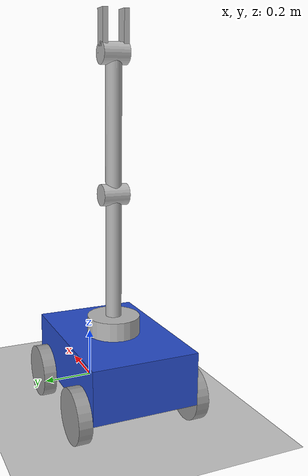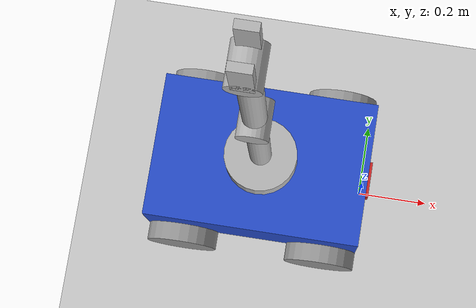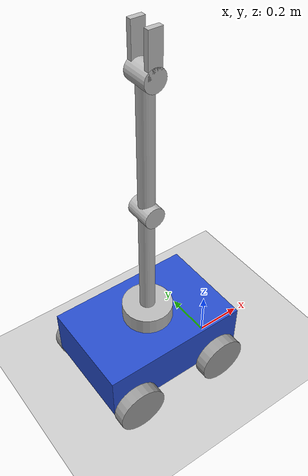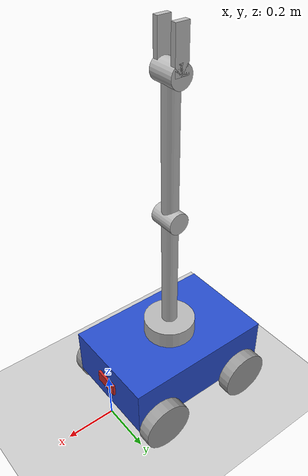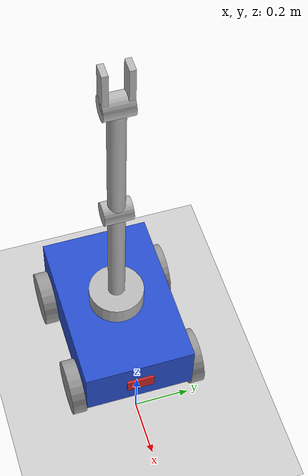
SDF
<sdf version="1.7">
 <world name="default">
  <model name="ground_plane">
   <static>1</static>
   <link name="link">
    <collision name="collision">
     <geometry><plane><normal>0 0 1</normal><size>100 100</size></plane></geometry>
     <surface>
      <contact><collide_bitmask>65535</collide_bitmask></contact>
      <friction><ode><mu>100</mu><mu2>50</mu2></ode></friction>
     </surface>
    </collision>
    <visual name="visual">
     <cast_shadows>0</cast_shadows>
     <geometry><plane><normal>0 0 1</normal><size>100 100</size></plane></geometry>
     <material>
      <script><uri>file://media/materials/scripts/gazebo.material</uri><name>Gazebo/Grey</name></script>
     </material>
    </visual>
   </link>
  </model>
  <model name="my_robot">
   <link name="base_footprint">
    <inertial>
     <pose>0.00598 0 0.2 0 -0 0</pose>
     <mass>5.1</mass>
     <inertia>
      <ixx>0.666753</ixx>
      <ixy>0</ixy>
      <ixz>0</ixz>
      <iyy>0.876123</iyy>
      <iyz>0</iyz>
      <izz>0.34287</izz>
     </inertia>
    </inertial>
    <collision name="base_footprint_fixed_joint_lump__base_link_collision">
     <pose>0 0 0.2 0 -0 0</pose>
     <geometry><box><size>0.6 0.4 0.2</size></box></geometry>
    </collision>
    <collision name="base_footprint_fixed_joint_lump__camera_link_collision_1">
     <pose>0.305 0 0.2 0 -0 0</pose>
     <geometry><box><size>0.01 0.1 0.05</size></box></geometry>
    </collision>
    <visual name="base_footprint_fixed_joint_lump__base_link_visual">
     <pose>0 0 0.2 0 -0 0</pose>
     <geometry><box><size>0.6 0.4 0.2</size></box></geometry>
     <material>
      <script><name>Gazebo/Blue</name><uri>file://media/materials/scripts/gazebo.material</uri></script>
     </material>
    </visual>
    <visual name="base_footprint_fixed_joint_lump__camera_link_visual_1">
     <pose>0.305 0 0.2 0 -0 0</pose>
     <geometry><box><size>0.01 0.1 0.05</size></box></geometry>
     <material>
      <script><name>Gazebo/Red</name><uri>file://media/materials/scripts/gazebo.material</uri></script>
     </material>
    </visual>
    <sensor name="camera_sensor" type="camera">
     <visualize>1</visualize>
     <update_rate>10</update_rate>
     <plugin name="camera_controller" filename="libgazebo_ros_camera.so">
      <frame_name>camera_link</frame_name>
     </plugin>
     <pose>0.305 0 0.2 0 -0 0</pose>
     <camera>
      <horizontal_fov>1.047</horizontal_fov>
      <image><width>320</width><height>240</height></image>
      <clip><near>0.1</near><far>100</far></clip>
     </camera>
    </sensor>
   </link>
   <joint name="base_arm_base_joint" type="revolute">
    <pose relative_to="base_footprint">0 0 0.335 0 -0 0</pose>
    <parent>base_footprint</parent>
    <child>arm_base_link</child>
    <axis>
     <xyz>0 0 1</xyz>
     <limit><lower>-1e+16</lower><upper>1e+16</upper></limit>
     <dynamics><spring_reference>0</spring_reference><spring_stiffness>0</spring_stiffness></dynamics>
    </axis>
   </joint>
   <link name="arm_base_link">
    <pose relative_to="base_arm_base_joint">0 0 0 0 -0 0</pose>
    <inertial>
     <mass>0.5</mass>
     <inertia>
      <ixx>0.00581667</ixx>
      <ixy>0</ixy>
      <ixz>0</ixz>
      <iyy>0.00581667</iyy>
      <iyz>0</iyz>
      <izz>0.01</izz>
     </inertia>
    </inertial>
    <collision name="arm_base_link_collision">
     <geometry><cylinder><length>0.07</length><radius>0.1</radius></cylinder></geometry>
    </collision>
    <visual name="arm_base_link_visual">
     <geometry><cylinder><length>0.07</length><radius>0.1</radius></cylinder></geometry>
    </visual>
   </link>
   <joint name="base_arm_first_joint" type="revolute">
    <pose relative_to="arm_base_link">0 0 0 0 -0 0</pose>
    <parent>arm_base_link</parent>
    <child>arm_link_first</child>
    <axis>
     <xyz>0 1 0</xyz>
     <limit><lower>-1.5708</lower><upper>1.5708</upper><effort>100</effort><velocity>100</velocity></limit>
     <dynamics><spring_reference>0</spring_reference><spring_stiffness>0</spring_stiffness></dynamics>
    </axis>
   </joint>
   <link name="arm_link_first">
    <pose relative_to="base_arm_first_joint">0 0 0 0 -0 0</pose>
    <inertial>
     <pose>0 0 0.25 0 -0 0</pose>
     <mass>0.6</mass>
     <inertia>
      <ixx>0.06425</ixx>
      <ixy>0</ixy>
      <ixz>0</ixz>
      <iyy>0.06373</iyy>
      <iyz>1.47304e-19</iyz>
      <izz>0.00202</izz>
     </inertia>
    </inertial>
    <collision name="arm_link_first_collision">
     <geometry><cylinder><length>0.5</length><radius>0.03</radius></cylinder></geometry>
    </collision>
    <collision name="arm_link_first_fixed_joint_lump__arm_joint_link_first_collision_1">
     <pose>0 0 0.5 1.5708 -0 0</pose>
     <geometry><cylinder><length>0.1</length><radius>0.04</radius></cylinder></geometry>
    </collision>
    <visual name="arm_link_first_visual">
     <pose>0 0 0.25 0 -0 0</pose>
     <geometry><cylinder><length>0.5</length><radius>0.03</radius></cylinder></geometry>
    </visual>
    <visual name="arm_link_first_fixed_joint_lump__arm_joint_link_first_visual_1">
     <pose>0 0 0.5 1.5708 -0 0</pose>
     <geometry><cylinder><length>0.1</length><radius>0.04</radius></cylinder></geometry>
    </visual>
   </link>
   <joint name="second_arm_link_joint" type="revolute">
    <pose relative_to="arm_link_first">0 0 0.5 0 -0 0</pose>
    <parent>arm_link_first</parent>
    <child>arm_link_second</child>
    <axis>
     <xyz>0 1 0</xyz>
     <limit><lower>-1e+16</lower><upper>1e+16</upper></limit>
     <dynamics><spring_reference>0</spring_reference><spring_stiffness>0</spring_stiffness></dynamics>
    </axis>
   </joint>
   <link name="arm_link_second">
    <pose relative_to="second_arm_link_joint">0 0 0 0 -0 0</pose>
    <inertial>
     <mass>0.3</mass>
     <inertia><ixx>0.02527</ixx><ixy>0</ixy><ixz>0</ixz><iyy>0.02527</iyy><iyz>0</iyz><izz>0.00054</izz></inertia>
    </inertial>
    <collision name="arm_link_second_collision">
     <geometry><cylinder><length>0.5</length><radius>0.03</radius></cylinder></geometry>
    </collision>
    <visual name="arm_link_second_visual">
     <pose>0 0 0.25 0 -0 0</pose>
     <geometry><cylinder><length>0.5</length><radius>0.03</radius></cylinder></geometry>
    </visual>
   </link>
   <joint name="arm_link_second_rev_joint" type="revolute">
    <pose relative_to="arm_link_second">0 0 0.5 1.5708 -0 0</pose>
    <parent>arm_link_second</parent>
    <child>arm_joint_link_second</child>
    <axis>
     <xyz>0 0 1</xyz>
     <limit><lower>-1e+16</lower><upper>1e+16</upper></limit>
     <dynamics><spring_reference>0</spring_reference><spring_stiffness>0</spring_stiffness></dynamics>
    </axis>
   </joint>
   <link name="arm_joint_link_second">
    <pose relative_to="arm_link_second_rev_joint">0 0 0 0 -0 0</pose>
    <inertial>
     <mass>0.3</mass>
     <inertia><ixx>0.00148</ixx><ixy>0</ixy><ixz>0</ixz><iyy>0.00148</iyy><iyz>0</iyz><izz>0.00096</izz></inertia>
    </inertial>
    <collision name="arm_joint_link_second_collision">
     <geometry><cylinder><length>0.1</length><radius>0.04</radius></cylinder></geometry>
    </collision>
    <visual name="arm_joint_link_second_visual">
     <geometry><cylinder><length>0.1</length><radius>0.04</radius></cylinder></geometry>
    </visual>
   </link>
   <joint name="gripper_left_joint" type="revolute">
    <pose relative_to="arm_joint_link_second">0 0 -0.04 0 0 -1.5708</pose>
    <parent>arm_joint_link_second</parent>
    <child>left_gripper</child>
    <axis>
     <xyz>0 1 0</xyz>
     <limit><lower>-1e+16</lower><upper>1e+16</upper></limit>
     <dynamics><spring_reference>0</spring_reference><spring_stiffness>0</spring_stiffness></dynamics>
    </axis>
   </joint>
   <link name="left_gripper">
    <pose relative_to="gripper_left_joint">0 0 0 0 -0 0</pose>
    <inertial>
     <mass>0.2</mass>
     <inertia>
      <ixx>0.00152667</ixx>
      <ixy>0</ixy>
      <ixz>0</ixz>
      <iyy>0.00166667</iyy>
      <iyz>0</iyz>
      <izz>0.000193333</izz>
     </inertia>
    </inertial>
    <collision name="left_gripper_collision">
     <pose>-0.075 0 0 0 -0 0</pose>
     <geometry><box><size>0.15 0.05 0.02</size></box></geometry>
    </collision>
    <visual name="left_gripper_visual">
     <pose>-0.075 0 0 0 -0 0</pose>
     <geometry><box><size>0.15 0.05 0.02</size></box></geometry>
    </visual>
   </link>
   <joint name="gripper_right_joint" type="revolute">
    <pose relative_to="arm_joint_link_second">0 0 0.04 0 0 -1.5708</pose>
    <parent>arm_joint_link_second</parent>
    <child>right_gripper</child>
    <axis>
     <xyz>0 1 0</xyz>
     <limit><lower>-1e+16</lower><upper>1e+16</upper></limit>
     <dynamics><spring_reference>0</spring_reference><spring_stiffness>0</spring_stiffness></dynamics>
    </axis>
   </joint>
   <link name="right_gripper">
    <pose relative_to="gripper_right_joint">0 0 0 0 -0 0</pose>
    <inertial>
     <mass>0.2</mass>
     <inertia>
      <ixx>0.00152667</ixx>
      <ixy>0</ixy>
      <ixz>0</ixz>
      <iyy>0.00166667</iyy>
      <iyz>0</iyz>
      <izz>0.000193333</izz>
     </inertia>
    </inertial>
    <collision name="right_gripper_collision">
     <pose>-0.075 0 0 0 -0 0</pose>
     <geometry><box><size>0.15 0.05 0.02</size></box></geometry>
    </collision>
    <visual name="right_gripper_visual">
     <pose>-0.075 0 0 0 -0 0</pose>
     <geometry><box><size>0.15 0.05 0.02</size></box></geometry>
    </visual>
   </link>
   <joint name="base_front_left_wheel_joint" type="revolute">
    <pose relative_to="base_footprint">0.2 0.225 0.1 1.5708 -0 0</pose>
    <parent>base_footprint</parent>
    <child>front_left_wheel_link</child>
    <axis>
     <xyz>0 0 1</xyz>
     <limit><lower>-1e+16</lower><upper>1e+16</upper></limit>
     <dynamics><spring_reference>0</spring_reference><spring_stiffness>0</spring_stiffness></dynamics>
    </axis>
   </joint>
   <link name="front_left_wheel_link">
    <pose relative_to="base_front_left_wheel_joint">0 0 0 0 -0 0</pose>
    <inertial>
     <mass>1</mass>
     <inertia><ixx>0.0108333</ixx><ixy>0</ixy><ixz>0</ixz><iyy>0.0108333</iyy><iyz>0</iyz><izz>0.02</izz></inertia>
    </inertial>
    <collision name="front_left_wheel_link_collision">
     <geometry><cylinder><length>0.05</length><radius>0.1</radius></cylinder></geometry>
    </collision>
    <visual name="front_left_wheel_link_visual">
     <geometry><cylinder><length>0.05</length><radius>0.1</radius></cylinder></geometry>
     <material>
      <script><name>Gazebo/Grey</name><uri>file://media/materials/scripts/gazebo.material</uri></script>
     </material>
    </visual>
   </link>
   <joint name="base_front_right_wheel_joint" type="revolute">
    <pose relative_to="base_footprint">0.2 -0.225 0.1 1.5708 -0 0</pose>
    <parent>base_footprint</parent>
    <child>front_right_wheel_link</child>
    <axis>
     <xyz>0 0 1</xyz>
     <limit><lower>-1e+16</lower><upper>1e+16</upper></limit>
     <dynamics><spring_reference>0</spring_reference><spring_stiffness>0</spring_stiffness></dynamics>
    </axis>
   </joint>
   <link name="front_right_wheel_link">
    <pose relative_to="base_front_right_wheel_joint">0 0 0 0 -0 0</pose>
    <inertial>
     <mass>1</mass>
     <inertia><ixx>0.0108333</ixx><ixy>0</ixy><ixz>0</ixz><iyy>0.0108333</iyy><iyz>0</iyz><izz>0.02</izz></inertia>
    </inertial>
    <collision name="front_right_wheel_link_collision">
     <geometry><cylinder><length>0.05</length><radius>0.1</radius></cylinder></geometry>
    </collision>
    <visual name="front_right_wheel_link_visual">
     <geometry><cylinder><length>0.05</length><radius>0.1</radius></cylinder></geometry>
     <material>
      <script><name>Gazebo/Grey</name><uri>file://media/materials/scripts/gazebo.material</uri></script>
     </material>
    </visual>
   </link>
   <joint name="base_left_wheel_joint" type="revolute">
    <pose relative_to="base_footprint">-0.2 0.225 0.1 1.5708 -0 0</pose>
    <parent>base_footprint</parent>
    <child>left_wheel_link</child>
    <axis>
     <xyz>0 0 1</xyz>
     <limit><lower>-1e+16</lower><upper>1e+16</upper></limit>
     <dynamics><spring_reference>0</spring_reference><spring_stiffness>0</spring_stiffness></dynamics>
    </axis>
   </joint>
   <link name="left_wheel_link">
    <pose relative_to="base_left_wheel_joint">0 0 0 0 -0 0</pose>
    <inertial>
     <mass>1</mass>
     <inertia><ixx>0.0108333</ixx><ixy>0</ixy><ixz>0</ixz><iyy>0.0108333</iyy><iyz>0</iyz><izz>0.02</izz></inertia>
    </inertial>
    <collision name="left_wheel_link_collision">
     <geometry><cylinder><length>0.05</length><radius>0.1</radius></cylinder></geometry>
    </collision>
    <visual name="left_wheel_link_visual">
     <geometry><cylinder><length>0.05</length><radius>0.1</radius></cylinder></geometry>
     <material>
      <script><name>Gazebo/Grey</name><uri>file://media/materials/scripts/gazebo.material</uri></script>
     </material>
    </visual>
   </link>
   <joint name="base_right_wheel_joint" type="revolute">
    <pose relative_to="base_footprint">-0.2 -0.225 0.1 1.5708 -0 0</pose>
    <parent>base_footprint</parent>
    <child>right_wheel_link</child>
    <axis>
     <xyz>0 0 1</xyz>
     <limit><lower>-1e+16</lower><upper>1e+16</upper></limit>
     <dynamics><spring_reference>0</spring_reference><spring_stiffness>0</spring_stiffness></dynamics>
    </axis>
   </joint>
   <link name="right_wheel_link">
    <pose relative_to="base_right_wheel_joint">0 0 0 0 -0 0</pose>
    <inertial>
     <mass>1</mass>
     <inertia><ixx>0.0108333</ixx><ixy>0</ixy><ixz>0</ixz><iyy>0.0108333</iyy><iyz>0</iyz><izz>0.02</izz></inertia>
    </inertial>
    <collision name="right_wheel_link_collision">
     <geometry><cylinder><length>0.05</length><radius>0.1</radius></cylinder></geometry>
    </collision>
    <visual name="right_wheel_link_visual">
     <geometry><cylinder><length>0.05</length><radius>0.1</radius></cylinder></geometry>
     <material>
      <script><name>Gazebo/Grey</name><uri>file://media/materials/scripts/gazebo.material</uri></script>
     </material>
    </visual>
   </link>
   <pose>-0.289728 0.009984 0 -0 -0 -0.00095</pose>
  </model>
 </world>
</sdf>
